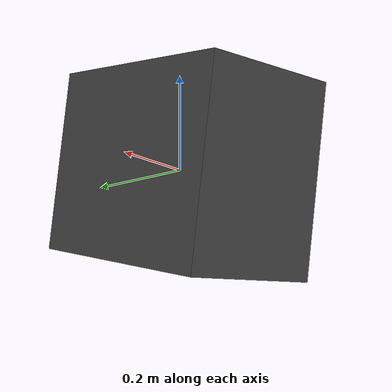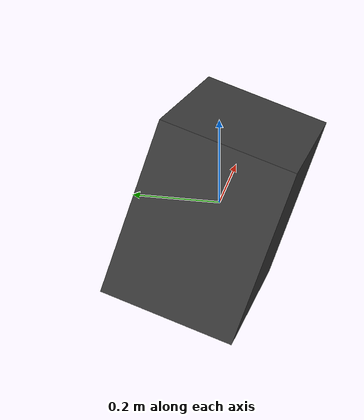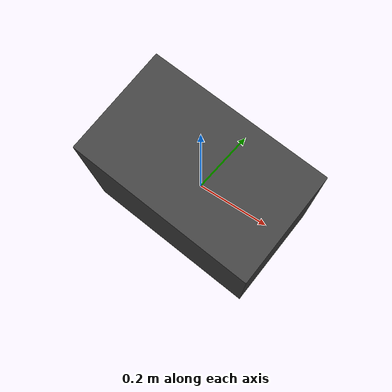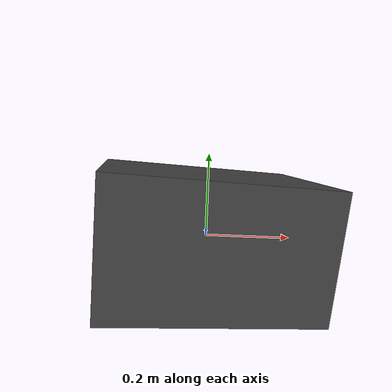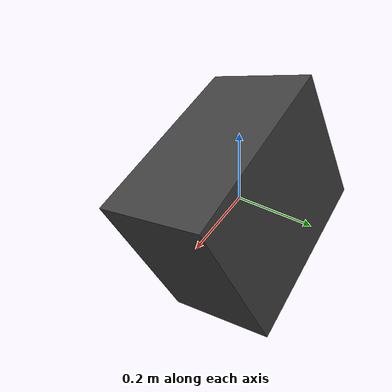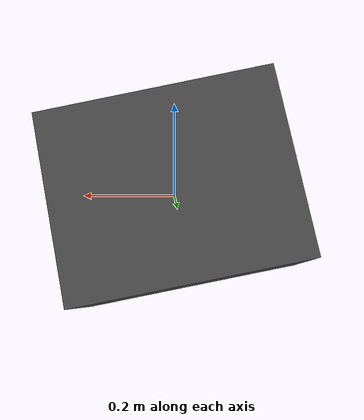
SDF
<?xml version="1.0"?>
<sdf version="1.9">
  <model name="crater_rock_01">
    <static>true</static>
    <link name="rock_link">
      <collision name="rock_collision">
        <pose>0 0 0 0.3 0.2 0</pose>
        <geometry>
          <box>
            <size>0.5 0.3 0.4</size>
          </box>
        </geometry>
        <surface>
          <friction>
            <ode>
              <mu>0.9</mu>
              <mu2>0.9</mu2>
            </ode>
          </friction>
        </surface>
      </collision>
      <visual name="rock_visual">
        <pose>0 0 0 0.3 0.2 0</pose>
        <geometry>
          <box>
            <size>0.5 0.3 0.4</size>
          </box>
        </geometry>
        <material>
          <ambient>0.15 0.15 0.15 1</ambient>
          <diffuse>0.25 0.25 0.25 1</diffuse>
          <specular>0.02 0.02 0.02 1</specular>
        </material>
      </visual>
    </link>
  </model>
</sdf>
